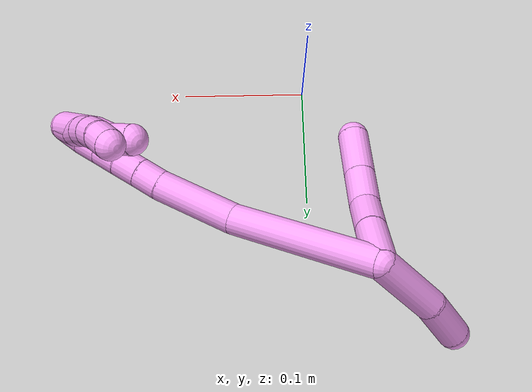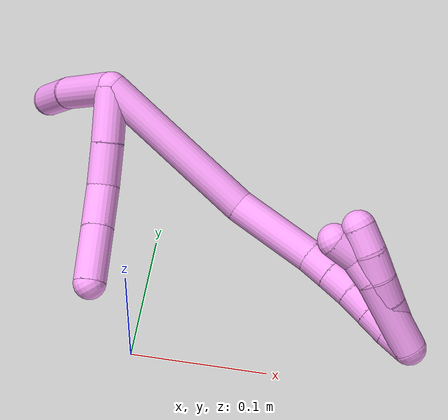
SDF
<sdf version="1.7">
 <world name="default">
  <model name="4">
   <static>0</static>
   <link name="4">
    <collision name="collision-cylinder-e_1_2_8">
     <pose>0.004677 0.010668 0.017358 -0.551077 0.225641 -0.064046</pose>
     <geometry><cylinder><radius>0.0125</radius><length>0.041807</length></cylinder></geometry>
     <surface>
      <friction><ode><mu>1.16</mu><mu2>1.16</mu2><slip1>0</slip1><slip2>0</slip2></ode></friction>
      <contact><ode><kp>1e+06</kp><kd>1</kd><max_vel>0</max_vel><min_depth>0.001</min_depth></ode></contact>
     </surface>
    </collision>
    <visual name="visual-cylinder-e_1_2_8">
     <pose>0.004677 0.010668 0.017358 -0.551077 0.225641 -0.064046</pose>
     <geometry><cylinder><radius>0.0125</radius><length>0.041807</length></cylinder></geometry>
     <material><ambient>1 0.65098 0.996078 1</ambient></material>
    </visual>
    <collision name="collision-cylinder-e_2_8_9">
     <pose>0.012391 0.030264 0.048082 -0.588915 0.186738 -0.056783</pose>
     <geometry><cylinder><radius>0.0125</radius><length>0.032718</length></cylinder></geometry>
     <surface>
      <friction><ode><mu>1.16</mu><mu2>1.16</mu2><slip1>0</slip1><slip2>0</slip2></ode></friction>
      <contact><ode><kp>1e+06</kp><kd>1</kd><max_vel>0</max_vel><min_depth>0.001</min_depth></ode></contact>
     </surface>
    </collision>
    <visual name="visual-cylinder-e_2_8_9">
     <pose>0.012391 0.030264 0.048082 -0.588915 0.186738 -0.056783</pose>
     <geometry><cylinder><radius>0.0125</radius><length>0.032718</length></cylinder></geometry>
     <material><ambient>1 0.65098 0.996078 1</ambient></material>
    </visual>
    <collision name="collision-cylinder-e_3_9_10">
     <pose>0.023069 0.046608 0.073921 -0.536412 0.484746 -0.135685</pose>
     <geometry><cylinder><radius>0.0125</radius><length>0.032797</length></cylinder></geometry>
     <surface>
      <friction><ode><mu>1.16</mu><mu2>1.16</mu2><slip1>0</slip1><slip2>0</slip2></ode></friction>
      <contact><ode><kp>1e+06</kp><kd>1</kd><max_vel>0</max_vel><min_depth>0.001</min_depth></ode></contact>
     </surface>
    </collision>
    <visual name="visual-cylinder-e_3_9_10">
     <pose>0.023069 0.046608 0.073921 -0.536412 0.484746 -0.135685</pose>
     <geometry><cylinder><radius>0.0125</radius><length>0.032797</length></cylinder></geometry>
     <material><ambient>1 0.65098 0.996078 1</ambient></material>
    </visual>
    <collision name="collision-cylinder-e_4_10_6">
     <pose>0.040991 0.063581 0.102464 -0.536512 0.502664 -0.140924</pose>
     <geometry><cylinder><radius>0.0125</radius><length>0.042677</length></cylinder></geometry>
     <surface>
      <friction><ode><mu>1.16</mu><mu2>1.16</mu2><slip1>0</slip1><slip2>0</slip2></ode></friction>
      <contact><ode><kp>1e+06</kp><kd>1</kd><max_vel>0</max_vel><min_depth>0.001</min_depth></ode></contact>
     </surface>
    </collision>
    <visual name="visual-cylinder-e_4_10_6">
     <pose>0.040991 0.063581 0.102464 -0.536512 0.502664 -0.140924</pose>
     <geometry><cylinder><radius>0.0125</radius><length>0.042677</length></cylinder></geometry>
     <material><ambient>1 0.65098 0.996078 1</ambient></material>
    </visual>
    <collision name="collision-cylinder-e_1_2_11">
     <pose>-0.01888 0.02215 -0.007202 -1.88515 -0.681153 0.907789</pose>
     <geometry><cylinder><radius>0.0125</radius><length>0.059965</length></cylinder></geometry>
     <surface>
      <friction><ode><mu>1.16</mu><mu2>1.16</mu2><slip1>0</slip1><slip2>0</slip2></ode></friction>
      <contact><ode><kp>1e+06</kp><kd>1</kd><max_vel>0</max_vel><min_depth>0.001</min_depth></ode></contact>
     </surface>
    </collision>
    <visual name="visual-cylinder-e_1_2_11">
     <pose>-0.01888 0.02215 -0.007202 -1.88515 -0.681153 0.907789</pose>
     <geometry><cylinder><radius>0.0125</radius><length>0.059965</length></cylinder></geometry>
     <material><ambient>1 0.65098 0.996078 1</ambient></material>
    </visual>
    <collision name="collision-cylinder-e_2_11_5">
     <pose>-0.052339 0.057853 -0.016516 -1.7254 -0.815929 0.934947</pose>
     <geometry><cylinder><radius>0.0125</radius><length>0.040035</length></cylinder></geometry>
     <surface>
      <friction><ode><mu>1.16</mu><mu2>1.16</mu2><slip1>0</slip1><slip2>0</slip2></ode></friction>
      <contact><ode><kp>1e+06</kp><kd>1</kd><max_vel>0</max_vel><min_depth>0.001</min_depth></ode></contact>
     </surface>
    </collision>
    <visual name="visual-cylinder-e_2_11_5">
     <pose>-0.052339 0.057853 -0.016516 -1.7254 -0.815929 0.934947</pose>
     <geometry><cylinder><radius>0.0125</radius><length>0.040035</length></cylinder></geometry>
     <material><ambient>1 0.65098 0.996078 1</ambient></material>
    </visual>
    <collision name="collision-cylinder-e_1_2_12">
     <pose>-0.002151 -0.02047 0.062208 0.317892 -0.032829 -0.005263</pose>
     <geometry><cylinder><radius>0.0125</radius><length>0.13105</length></cylinder></geometry>
     <surface>
      <friction><ode><mu>1.16</mu><mu2>1.16</mu2><slip1>0</slip1><slip2>0</slip2></ode></friction>
      <contact><ode><kp>1e+06</kp><kd>1</kd><max_vel>0</max_vel><min_depth>0.001</min_depth></ode></contact>
     </surface>
    </collision>
    <visual name="visual-cylinder-e_1_2_12">
     <pose>-0.002151 -0.02047 0.062208 0.317892 -0.032829 -0.005263</pose>
     <geometry><cylinder><radius>0.0125</radius><length>0.13105</length></cylinder></geometry>
     <material><ambient>1 0.65098 0.996078 1</ambient></material>
    </visual>
    <collision name="collision-cylinder-e_2_12_13">
     <pose>0.00268 -0.057246 0.153152 0.516161 0.208251 0.055157</pose>
     <geometry><cylinder><radius>0.0125</radius><length>0.067538</length></cylinder></geometry>
     <surface>
      <friction><ode><mu>1.16</mu><mu2>1.16</mu2><slip1>0</slip1><slip2>0</slip2></ode></friction>
      <contact><ode><kp>1e+06</kp><kd>1</kd><max_vel>0</max_vel><min_depth>0.001</min_depth></ode></contact>
     </surface>
    </collision>
    <visual name="visual-cylinder-e_2_12_13">
     <pose>0.00268 -0.057246 0.153152 0.516161 0.208251 0.055157</pose>
     <geometry><cylinder><radius>0.0125</radius><length>0.067538</length></cylinder></geometry>
     <material><ambient>1 0.65098 0.996078 1</ambient></material>
    </visual>
    <collision name="collision-cylinder-e_3_13_14">
     <pose>0.012645 -0.077862 0.190638 0.457607 0.296805 0.069604</pose>
     <geometry><cylinder><radius>0.0125</radius><length>0.0204</length></cylinder></geometry>
     <surface>
      <friction><ode><mu>1.16</mu><mu2>1.16</mu2><slip1>0</slip1><slip2>0</slip2></ode></friction>
      <contact><ode><kp>1e+06</kp><kd>1</kd><max_vel>0</max_vel><min_depth>0.001</min_depth></ode></contact>
     </surface>
    </collision>
    <visual name="visual-cylinder-e_3_13_14">
     <pose>0.012645 -0.077862 0.190638 0.457607 0.296805 0.069604</pose>
     <geometry><cylinder><radius>0.0125</radius><length>0.0204</length></cylinder></geometry>
     <material><ambient>1 0.65098 0.996078 1</ambient></material>
    </visual>
    <collision name="collision-cylinder-e_4_14_15">
     <pose>0.018346 -0.086302 0.208354 0.431716 0.268618 0.05924</pose>
     <geometry><cylinder><radius>0.0125</radius><length>0.020477</length></cylinder></geometry>
     <surface>
      <friction><ode><mu>1.16</mu><mu2>1.16</mu2><slip1>0</slip1><slip2>0</slip2></ode></friction>
      <contact><ode><kp>1e+06</kp><kd>1</kd><max_vel>0</max_vel><min_depth>0.001</min_depth></ode></contact>
     </surface>
    </collision>
    <visual name="visual-cylinder-e_4_14_15">
     <pose>0.018346 -0.086302 0.208354 0.431716 0.268618 0.05924</pose>
     <geometry><cylinder><radius>0.0125</radius><length>0.020477</length></cylinder></geometry>
     <material><ambient>1 0.65098 0.996078 1</ambient></material>
    </visual>
    <collision name="collision-cylinder-e_5_15_16">
     <pose>0.023304 -0.093738 0.226583 0.342763 0.224046 0.038936</pose>
     <geometry><cylinder><radius>0.0125</radius><length>0.020174</length></cylinder></geometry>
     <surface>
      <friction><ode><mu>1.16</mu><mu2>1.16</mu2><slip1>0</slip1><slip2>0</slip2></ode></friction>
      <contact><ode><kp>1e+06</kp><kd>1</kd><max_vel>0</max_vel><min_depth>0.001</min_depth></ode></contact>
     </surface>
    </collision>
    <visual name="visual-cylinder-e_5_15_16">
     <pose>0.023304 -0.093738 0.226583 0.342763 0.224046 0.038936</pose>
     <geometry><cylinder><radius>0.0125</radius><length>0.020174</length></cylinder></geometry>
     <material><ambient>1 0.65098 0.996078 1</ambient></material>
    </visual>
    <collision name="collision-cylinder-e_6_16_17">
     <pose>0.02759 -0.100209 0.245157 0.327721 0.205034 0.034017</pose>
     <geometry><cylinder><radius>0.0125</radius><length>0.02009</length></cylinder></geometry>
     <surface>
      <friction><ode><mu>1.16</mu><mu2>1.16</mu2><slip1>0</slip1><slip2>0</slip2></ode></friction>
      <contact><ode><kp>1e+06</kp><kd>1</kd><max_vel>0</max_vel><min_depth>0.001</min_depth></ode></contact>
     </surface>
    </collision>
    <visual name="visual-cylinder-e_6_16_17">
     <pose>0.02759 -0.100209 0.245157 0.327721 0.205034 0.034017</pose>
     <geometry><cylinder><radius>0.0125</radius><length>0.02009</length></cylinder></geometry>
     <material><ambient>1 0.65098 0.996078 1</ambient></material>
    </visual>
    <collision name="collision-cylinder-e_7_17_1">
     <pose>0.033627 -0.107654 0.262743 0.477256 0.404749 0.099744</pose>
     <geometry><cylinder><radius>0.0125</radius><length>0.02027</length></cylinder></geometry>
     <surface>
      <friction><ode><mu>1.16</mu><mu2>1.16</mu2><slip1>0</slip1><slip2>0</slip2></ode></friction>
      <contact><ode><kp>1e+06</kp><kd>1</kd><max_vel>0</max_vel><min_depth>0.001</min_depth></ode></contact>
     </surface>
    </collision>
    <visual name="visual-cylinder-e_7_17_1">
     <pose>0.033627 -0.107654 0.262743 0.477256 0.404749 0.099744</pose>
     <geometry><cylinder><radius>0.0125</radius><length>0.02027</length></cylinder></geometry>
     <material><ambient>1 0.65098 0.996078 1</ambient></material>
    </visual>
    <collision name="collision-cylinder-e_1_1_18">
     <pose>0.038463 -0.112344 0.261062 3.10029 0.084675 2.23438</pose>
     <geometry><cylinder><radius>0.0125</radius><length>0.02</length></cylinder></geometry>
     <surface>
      <friction><ode><mu>1.16</mu><mu2>1.16</mu2><slip1>0</slip1><slip2>0</slip2></ode></friction>
      <contact><ode><kp>1e+06</kp><kd>1</kd><max_vel>0</max_vel><min_depth>0.001</min_depth></ode></contact>
     </surface>
    </collision>
    <visual name="visual-cylinder-e_1_1_18">
     <pose>0.038463 -0.112344 0.261062 3.10029 0.084675 2.23438</pose>
     <geometry><cylinder><radius>0.0125</radius><length>0.02</length></cylinder></geometry>
     <material><ambient>1 0.65098 0.996078 1</ambient></material>
    </visual>
    <collision name="collision-cylinder-e_2_18_19">
     <pose>0.042561 -0.114761 0.241865 2.92796 0.331218 2.00081</pose>
     <geometry><cylinder><radius>0.0125</radius><length>0.02</length></cylinder></geometry>
     <surface>
      <friction><ode><mu>1.16</mu><mu2>1.16</mu2><slip1>0</slip1><slip2>0</slip2></ode></friction>
      <contact><ode><kp>1e+06</kp><kd>1</kd><max_vel>0</max_vel><min_depth>0.001</min_depth></ode></contact>
     </surface>
    </collision>
    <visual name="visual-cylinder-e_2_18_19">
     <pose>0.042561 -0.114761 0.241865 2.92796 0.331218 2.00081</pose>
     <geometry><cylinder><radius>0.0125</radius><length>0.02</length></cylinder></geometry>
     <material><ambient>1 0.65098 0.996078 1</ambient></material>
    </visual>
    <collision name="collision-cylinder-e_3_19_20">
     <pose>0.048479 -0.118818 0.223207 2.92697 0.269823 1.79989</pose>
     <geometry><cylinder><radius>0.0125</radius><length>0.02</length></cylinder></geometry>
     <surface>
      <friction><ode><mu>1.16</mu><mu2>1.16</mu2><slip1>0</slip1><slip2>0</slip2></ode></friction>
      <contact><ode><kp>1e+06</kp><kd>1</kd><max_vel>0</max_vel><min_depth>0.001</min_depth></ode></contact>
     </surface>
    </collision>
    <visual name="visual-cylinder-e_3_19_20">
     <pose>0.048479 -0.118818 0.223207 2.92697 0.269823 1.79989</pose>
     <geometry><cylinder><radius>0.0125</radius><length>0.02</length></cylinder></geometry>
     <material><ambient>1 0.65098 0.996078 1</ambient></material>
    </visual>
    <collision name="collision-cylinder-e_4_20_21">
     <pose>0.052579 -0.122716 0.204067 2.95411 0.144019 1.3089</pose>
     <geometry><cylinder><radius>0.0125</radius><length>0.02</length></cylinder></geometry>
     <surface>
      <friction><ode><mu>1.16</mu><mu2>1.16</mu2><slip1>0</slip1><slip2>0</slip2></ode></friction>
      <contact><ode><kp>1e+06</kp><kd>1</kd><max_vel>0</max_vel><min_depth>0.001</min_depth></ode></contact>
     </surface>
    </collision>
    <visual name="visual-cylinder-e_4_20_21">
     <pose>0.052579 -0.122716 0.204067 2.95411 0.144019 1.3089</pose>
     <geometry><cylinder><radius>0.0125</radius><length>0.02</length></cylinder></geometry>
     <material><ambient>1 0.65098 0.996078 1</ambient></material>
    </visual>
    <collision name="collision-cylinder-e_5_21_4">
     <pose>0.053688 -0.125569 0.1844 3.04053 -0.032676 -0.62498</pose>
     <geometry><cylinder><radius>0.0125</radius><length>0.02</length></cylinder></geometry>
     <surface>
      <friction><ode><mu>1.16</mu><mu2>1.16</mu2><slip1>0</slip1><slip2>0</slip2></ode></friction>
      <contact><ode><kp>1e+06</kp><kd>1</kd><max_vel>0</max_vel><min_depth>0.001</min_depth></ode></contact>
     </surface>
    </collision>
    <visual name="visual-cylinder-e_5_21_4">
     <pose>0.053688 -0.125569 0.1844 3.04053 -0.032676 -0.62498</pose>
     <geometry><cylinder><radius>0.0125</radius><length>0.02</length></cylinder></geometry>
     <material><ambient>1 0.65098 0.996078 1</ambient></material>
    </visual>
    <collision name="collision-cylinder-e_1_1_22">
     <pose>0.044088 -0.114095 0.242104 3.06697 0.21957 2.48853</pose>
     <geometry><cylinder><radius>0.0125</radius><length>0.059416</length></cylinder></geometry>
     <surface>
      <friction><ode><mu>1.16</mu><mu2>1.16</mu2><slip1>0</slip1><slip2>0</slip2></ode></friction>
      <contact><ode><kp>1e+06</kp><kd>1</kd><max_vel>0</max_vel><min_depth>0.001</min_depth></ode></contact>
     </surface>
    </collision>
    <visual name="visual-cylinder-e_1_1_22">
     <pose>0.044088 -0.114095 0.242104 3.06697 0.21957 2.48853</pose>
     <geometry><cylinder><radius>0.0125</radius><length>0.059416</length></cylinder></geometry>
     <material><ambient>1 0.65098 0.996078 1</ambient></material>
    </visual>
    <collision name="collision-cylinder-e_2_22_23">
     <pose>0.050497 -0.115155 0.203188 -3.03193 -0.006198 0.1128</pose>
     <geometry><cylinder><radius>0.0125</radius><length>0.020125</length></cylinder></geometry>
     <surface>
      <friction><ode><mu>1.16</mu><mu2>1.16</mu2><slip1>0</slip1><slip2>0</slip2></ode></friction>
      <contact><ode><kp>1e+06</kp><kd>1</kd><max_vel>0</max_vel><min_depth>0.001</min_depth></ode></contact>
     </surface>
    </collision>
    <visual name="visual-cylinder-e_2_22_23">
     <pose>0.050497 -0.115155 0.203188 -3.03193 -0.006198 0.1128</pose>
     <geometry><cylinder><radius>0.0125</radius><length>0.020125</length></cylinder></geometry>
     <material><ambient>1 0.65098 0.996078 1</ambient></material>
    </visual>
    <collision name="collision-cylinder-e_3_23_3">
     <pose>0.052559 -0.11033 0.183899 -2.7603 0.209238 -0.996582</pose>
     <geometry><cylinder><radius>0.0125</radius><length>0.020459</length></cylinder></geometry>
     <surface>
      <friction><ode><mu>1.16</mu><mu2>1.16</mu2><slip1>0</slip1><slip2>0</slip2></ode></friction>
      <contact><ode><kp>1e+06</kp><kd>1</kd><max_vel>0</max_vel><min_depth>0.001</min_depth></ode></contact>
     </surface>
    </collision>
    <visual name="visual-cylinder-e_3_23_3">
     <pose>0.052559 -0.11033 0.183899 -2.7603 0.209238 -0.996582</pose>
     <geometry><cylinder><radius>0.0125</radius><length>0.020459</length></cylinder></geometry>
     <material><ambient>1 0.65098 0.996078 1</ambient></material>
    </visual>
    <collision name="collision-sphere-3">
     <pose>0.054684 -0.106607 0.174611 0 -0 0</pose>
     <geometry><sphere><radius>0.0125</radius></sphere></geometry>
     <surface>
      <friction><ode><mu>1.16</mu><mu2>1.16</mu2><slip1>0</slip1><slip2>0</slip2></ode></friction>
      <contact><ode><kp>1e+06</kp><kd>1</kd><max_vel>0</max_vel><min_depth>0.001</min_depth></ode></contact>
     </surface>
    </collision>
    <visual name="visual-sphere-3">
     <pose>0.054684 -0.106607 0.174611 0 -0 0</pose>
     <geometry><sphere><radius>0.0125</radius></sphere></geometry>
     <material><ambient>1 0.65098 0.996078 1</ambient></material>
    </visual>
    <collision name="collision-sphere-23">
     <pose>0.050434 -0.114054 0.193186 0 -0 0</pose>
     <geometry><sphere><radius>0.0125</radius></sphere></geometry>
     <surface>
      <friction><ode><mu>1.16</mu><mu2>1.16</mu2><slip1>0</slip1><slip2>0</slip2></ode></friction>
      <contact><ode><kp>1e+06</kp><kd>1</kd><max_vel>0</max_vel><min_depth>0.001</min_depth></ode></contact>
     </surface>
    </collision>
    <visual name="visual-sphere-23">
     <pose>0.050434 -0.114054 0.193186 0 -0 0</pose>
     <geometry><sphere><radius>0.0125</radius></sphere></geometry>
     <material><ambient>1 0.65098 0.996078 1</ambient></material>
    </visual>
    <collision name="collision-sphere-22">
     <pose>0.050559 -0.116256 0.21319 0 -0 0</pose>
     <geometry><sphere><radius>0.0125</radius></sphere></geometry>
     <surface>
      <friction><ode><mu>1.16</mu><mu2>1.16</mu2><slip1>0</slip1><slip2>0</slip2></ode></friction>
      <contact><ode><kp>1e+06</kp><kd>1</kd><max_vel>0</max_vel><min_depth>0.001</min_depth></ode></contact>
     </surface>
    </collision>
    <visual name="visual-sphere-22">
     <pose>0.050559 -0.116256 0.21319 0 -0 0</pose>
     <geometry><sphere><radius>0.0125</radius></sphere></geometry>
     <material><ambient>1 0.65098 0.996078 1</ambient></material>
    </visual>
    <collision name="collision-sphere-4">
     <pose>0.053361 -0.126577 0.174456 0 -0 0</pose>
     <geometry><sphere><radius>0.0125</radius></sphere></geometry>
     <surface>
      <friction><ode><mu>1.16</mu><mu2>1.16</mu2><slip1>0</slip1><slip2>0</slip2></ode></friction>
      <contact><ode><kp>1e+06</kp><kd>1</kd><max_vel>0</max_vel><min_depth>0.001</min_depth></ode></contact>
     </surface>
    </collision>
    <visual name="visual-sphere-4">
     <pose>0.053361 -0.126577 0.174456 0 -0 0</pose>
     <geometry><sphere><radius>0.0125</radius></sphere></geometry>
     <material><ambient>1 0.65098 0.996078 1</ambient></material>
    </visual>
    <collision name="collision-sphere-21">
     <pose>0.054015 -0.12456 0.194344 0 -0 0</pose>
     <geometry><sphere><radius>0.0125</radius></sphere></geometry>
     <surface>
      <friction><ode><mu>1.16</mu><mu2>1.16</mu2><slip1>0</slip1><slip2>0</slip2></ode></friction>
      <contact><ode><kp>1e+06</kp><kd>1</kd><max_vel>0</max_vel><min_depth>0.001</min_depth></ode></contact>
     </surface>
    </collision>
    <visual name="visual-sphere-21">
     <pose>0.054015 -0.12456 0.194344 0 -0 0</pose>
     <geometry><sphere><radius>0.0125</radius></sphere></geometry>
     <material><ambient>1 0.65098 0.996078 1</ambient></material>
    </visual>
    <collision name="collision-sphere-20">
     <pose>0.051144 -0.120871 0.21379 0 -0 0</pose>
     <geometry><sphere><radius>0.0125</radius></sphere></geometry>
     <surface>
      <friction><ode><mu>1.16</mu><mu2>1.16</mu2><slip1>0</slip1><slip2>0</slip2></ode></friction>
      <contact><ode><kp>1e+06</kp><kd>1</kd><max_vel>0</max_vel><min_depth>0.001</min_depth></ode></contact>
     </surface>
    </collision>
    <visual name="visual-sphere-20">
     <pose>0.051144 -0.120871 0.21379 0 -0 0</pose>
     <geometry><sphere><radius>0.0125</radius></sphere></geometry>
     <material><ambient>1 0.65098 0.996078 1</ambient></material>
    </visual>
    <collision name="collision-sphere-11">
     <pose>-0.037759 0.044301 -0.014404 0 -0 0</pose>
     <geometry><sphere><radius>0.0125</radius></sphere></geometry>
     <surface>
      <friction><ode><mu>1.16</mu><mu2>1.16</mu2><slip1>0</slip1><slip2>0</slip2></ode></friction>
      <contact><ode><kp>1e+06</kp><kd>1</kd><max_vel>0</max_vel><min_depth>0.001</min_depth></ode></contact>
     </surface>
    </collision>
    <visual name="visual-sphere-11">
     <pose>-0.037759 0.044301 -0.014404 0 -0 0</pose>
     <geometry><sphere><radius>0.0125</radius></sphere></geometry>
     <material><ambient>1 0.65098 0.996078 1</ambient></material>
    </visual>
    <collision name="collision-sphere-6">
     <pose>0.051271 0.073139 0.118536 0 -0 0</pose>
     <geometry><sphere><radius>0.0125</radius></sphere></geometry>
     <surface>
      <friction><ode><mu>1.16</mu><mu2>1.16</mu2><slip1>0</slip1><slip2>0</slip2></ode></friction>
      <contact><ode><kp>1e+06</kp><kd>1</kd><max_vel>0</max_vel><min_depth>0.001</min_depth></ode></contact>
     </surface>
    </collision>
    <visual name="visual-sphere-6">
     <pose>0.051271 0.073139 0.118536 0 -0 0</pose>
     <geometry><sphere><radius>0.0125</radius></sphere></geometry>
     <material><ambient>1 0.65098 0.996078 1</ambient></material>
    </visual>
    <collision name="collision-sphere-10">
     <pose>0.030711 0.054024 0.086392 0 -0 0</pose>
     <geometry><sphere><radius>0.0125</radius></sphere></geometry>
     <surface>
      <friction><ode><mu>1.16</mu><mu2>1.16</mu2><slip1>0</slip1><slip2>0</slip2></ode></friction>
      <contact><ode><kp>1e+06</kp><kd>1</kd><max_vel>0</max_vel><min_depth>0.001</min_depth></ode></contact>
     </surface>
    </collision>
    <visual name="visual-sphere-10">
     <pose>0.030711 0.054024 0.086392 0 -0 0</pose>
     <geometry><sphere><radius>0.0125</radius></sphere></geometry>
     <material><ambient>1 0.65098 0.996078 1</ambient></material>
    </visual>
    <collision name="collision-sphere-9">
     <pose>0.015428 0.039193 0.061449 0 -0 0</pose>
     <geometry><sphere><radius>0.0125</radius></sphere></geometry>
     <surface>
      <friction><ode><mu>1.16</mu><mu2>1.16</mu2><slip1>0</slip1><slip2>0</slip2></ode></friction>
      <contact><ode><kp>1e+06</kp><kd>1</kd><max_vel>0</max_vel><min_depth>0.001</min_depth></ode></contact>
     </surface>
    </collision>
    <visual name="visual-sphere-9">
     <pose>0.015428 0.039193 0.061449 0 -0 0</pose>
     <geometry><sphere><radius>0.0125</radius></sphere></geometry>
     <material><ambient>1 0.65098 0.996078 1</ambient></material>
    </visual>
    <collision name="collision-sphere-2">
     <geometry><sphere><radius>0.0125</radius></sphere></geometry>
     <surface>
      <friction><ode><mu>1.16</mu><mu2>1.16</mu2><slip1>0</slip1><slip2>0</slip2></ode></friction>
      <contact><ode><kp>1e+06</kp><kd>1</kd><max_vel>0</max_vel><min_depth>0.001</min_depth></ode></contact>
     </surface>
    </collision>
    <visual name="visual-sphere-2">
     <geometry><sphere><radius>0.0125</radius></sphere></geometry>
     <material><ambient>1 0.65098 0.996078 1</ambient></material>
    </visual>
    <collision name="collision-sphere-19">
     <pose>0.045813 -0.116766 0.232624 0 -0 0</pose>
     <geometry><sphere><radius>0.0125</radius></sphere></geometry>
     <surface>
      <friction><ode><mu>1.16</mu><mu2>1.16</mu2><slip1>0</slip1><slip2>0</slip2></ode></friction>
      <contact><ode><kp>1e+06</kp><kd>1</kd><max_vel>0</max_vel><min_depth>0.001</min_depth></ode></contact>
     </surface>
    </collision>
    <visual name="visual-sphere-19">
     <pose>0.045813 -0.116766 0.232624 0 -0 0</pose>
     <geometry><sphere><radius>0.0125</radius></sphere></geometry>
     <material><ambient>1 0.65098 0.996078 1</ambient></material>
    </visual>
    <collision name="collision-sphere-8">
     <pose>0.009354 0.021336 0.034715 0 -0 0</pose>
     <geometry><sphere><radius>0.0125</radius></sphere></geometry>
     <surface>
      <friction><ode><mu>1.16</mu><mu2>1.16</mu2><slip1>0</slip1><slip2>0</slip2></ode></friction>
      <contact><ode><kp>1e+06</kp><kd>1</kd><max_vel>0</max_vel><min_depth>0.001</min_depth></ode></contact>
     </surface>
    </collision>
    <visual name="visual-sphere-8">
     <pose>0.009354 0.021336 0.034715 0 -0 0</pose>
     <geometry><sphere><radius>0.0125</radius></sphere></geometry>
     <material><ambient>1 0.65098 0.996078 1</ambient></material>
    </visual>
    <collision name="collision-sphere-5">
     <pose>-0.066919 0.071405 -0.018628 0 -0 0</pose>
     <geometry><sphere><radius>0.0125</radius></sphere></geometry>
     <surface>
      <friction><ode><mu>1.16</mu><mu2>1.16</mu2><slip1>0</slip1><slip2>0</slip2></ode></friction>
      <contact><ode><kp>1e+06</kp><kd>1</kd><max_vel>0</max_vel><min_depth>0.001</min_depth></ode></contact>
     </surface>
    </collision>
    <visual name="visual-sphere-5">
     <pose>-0.066919 0.071405 -0.018628 0 -0 0</pose>
     <geometry><sphere><radius>0.0125</radius></sphere></geometry>
     <material><ambient>1 0.65098 0.996078 1</ambient></material>
    </visual>
    <collision name="collision-sphere-12">
     <pose>-0.004302 -0.040939 0.124417 0 -0 0</pose>
     <geometry><sphere><radius>0.0125</radius></sphere></geometry>
     <surface>
      <friction><ode><mu>1.16</mu><mu2>1.16</mu2><slip1>0</slip1><slip2>0</slip2></ode></friction>
      <contact><ode><kp>1e+06</kp><kd>1</kd><max_vel>0</max_vel><min_depth>0.001</min_depth></ode></contact>
     </surface>
    </collision>
    <visual name="visual-sphere-12">
     <pose>-0.004302 -0.040939 0.124417 0 -0 0</pose>
     <geometry><sphere><radius>0.0125</radius></sphere></geometry>
     <material><ambient>1 0.65098 0.996078 1</ambient></material>
    </visual>
    <collision name="collision-sphere-13">
     <pose>0.009662 -0.073553 0.181887 0 -0 0</pose>
     <geometry><sphere><radius>0.0125</radius></sphere></geometry>
     <surface>
      <friction><ode><mu>1.16</mu><mu2>1.16</mu2><slip1>0</slip1><slip2>0</slip2></ode></friction>
      <contact><ode><kp>1e+06</kp><kd>1</kd><max_vel>0</max_vel><min_depth>0.001</min_depth></ode></contact>
     </surface>
    </collision>
    <visual name="visual-sphere-13">
     <pose>0.009662 -0.073553 0.181887 0 -0 0</pose>
     <geometry><sphere><radius>0.0125</radius></sphere></geometry>
     <material><ambient>1 0.65098 0.996078 1</ambient></material>
    </visual>
    <collision name="collision-sphere-14">
     <pose>0.015628 -0.082171 0.199388 0 -0 0</pose>
     <geometry><sphere><radius>0.0125</radius></sphere></geometry>
     <surface>
      <friction><ode><mu>1.16</mu><mu2>1.16</mu2><slip1>0</slip1><slip2>0</slip2></ode></friction>
      <contact><ode><kp>1e+06</kp><kd>1</kd><max_vel>0</max_vel><min_depth>0.001</min_depth></ode></contact>
     </surface>
    </collision>
    <visual name="visual-sphere-14">
     <pose>0.015628 -0.082171 0.199388 0 -0 0</pose>
     <geometry><sphere><radius>0.0125</radius></sphere></geometry>
     <material><ambient>1 0.65098 0.996078 1</ambient></material>
    </visual>
    <collision name="collision-sphere-15">
     <pose>0.021063 -0.090432 0.21732 0 -0 0</pose>
     <geometry><sphere><radius>0.0125</radius></sphere></geometry>
     <surface>
      <friction><ode><mu>1.16</mu><mu2>1.16</mu2><slip1>0</slip1><slip2>0</slip2></ode></friction>
      <contact><ode><kp>1e+06</kp><kd>1</kd><max_vel>0</max_vel><min_depth>0.001</min_depth></ode></contact>
     </surface>
    </collision>
    <visual name="visual-sphere-15">
     <pose>0.021063 -0.090432 0.21732 0 -0 0</pose>
     <geometry><sphere><radius>0.0125</radius></sphere></geometry>
     <material><ambient>1 0.65098 0.996078 1</ambient></material>
    </visual>
    <collision name="collision-sphere-16">
     <pose>0.025545 -0.097043 0.235846 0 -0 0</pose>
     <geometry><sphere><radius>0.0125</radius></sphere></geometry>
     <surface>
      <friction><ode><mu>1.16</mu><mu2>1.16</mu2><slip1>0</slip1><slip2>0</slip2></ode></friction>
      <contact><ode><kp>1e+06</kp><kd>1</kd><max_vel>0</max_vel><min_depth>0.001</min_depth></ode></contact>
     </surface>
    </collision>
    <visual name="visual-sphere-16">
     <pose>0.025545 -0.097043 0.235846 0 -0 0</pose>
     <geometry><sphere><radius>0.0125</radius></sphere></geometry>
     <material><ambient>1 0.65098 0.996078 1</ambient></material>
    </visual>
    <collision name="collision-sphere-17">
     <pose>0.029636 -0.103374 0.254468 0 -0 0</pose>
     <geometry><sphere><radius>0.0125</radius></sphere></geometry>
     <surface>
      <friction><ode><mu>1.16</mu><mu2>1.16</mu2><slip1>0</slip1><slip2>0</slip2></ode></friction>
      <contact><ode><kp>1e+06</kp><kd>1</kd><max_vel>0</max_vel><min_depth>0.001</min_depth></ode></contact>
     </surface>
    </collision>
    <visual name="visual-sphere-17">
     <pose>0.029636 -0.103374 0.254468 0 -0 0</pose>
     <geometry><sphere><radius>0.0125</radius></sphere></geometry>
     <material><ambient>1 0.65098 0.996078 1</ambient></material>
    </visual>
    <collision name="collision-sphere-1">
     <pose>0.037618 -0.111933 0.271018 0 -0 0</pose>
     <geometry><sphere><radius>0.0125</radius></sphere></geometry>
     <surface>
      <friction><ode><mu>1.16</mu><mu2>1.16</mu2><slip1>0</slip1><slip2>0</slip2></ode></friction>
      <contact><ode><kp>1e+06</kp><kd>1</kd><max_vel>0</max_vel><min_depth>0.001</min_depth></ode></contact>
     </surface>
    </collision>
    <visual name="visual-sphere-1">
     <pose>0.037618 -0.111933 0.271018 0 -0 0</pose>
     <geometry><sphere><radius>0.0125</radius></sphere></geometry>
     <material><ambient>1 0.65098 0.996078 1</ambient></material>
    </visual>
    <collision name="collision-sphere-18">
     <pose>0.039309 -0.112756 0.251107 0 -0 0</pose>
     <geometry><sphere><radius>0.0125</radius></sphere></geometry>
     <surface>
      <friction><ode><mu>1.16</mu><mu2>1.16</mu2><slip1>0</slip1><slip2>0</slip2></ode></friction>
      <contact><ode><kp>1e+06</kp><kd>1</kd><max_vel>0</max_vel><min_depth>0.001</min_depth></ode></contact>
     </surface>
    </collision>
    <visual name="visual-sphere-18">
     <pose>0.039309 -0.112756 0.251107 0 -0 0</pose>
     <geometry><sphere><radius>0.0125</radius></sphere></geometry>
     <material><ambient>1 0.65098 0.996078 1</ambient></material>
    </visual>
    <inertial>
     <pose>0.015393 -0.039875 0.12534 0 -0 0</pose>
     <mass>0.75</mass>
     <inertia>
      <ixx>0.000283</ixx>
      <ixy>0</ixy>
      <ixz>0</ixz>
      <iyy>0.000291</iyy>
      <iyz>0</iyz>
      <izz>6.3e-05</izz>
     </inertia>
    </inertial>
   </link>
   <pose>-0.0469 0.178886 0.082007 -2.41386 -0.730331 -1.70402</pose>
  </model>
 </world>
</sdf>
